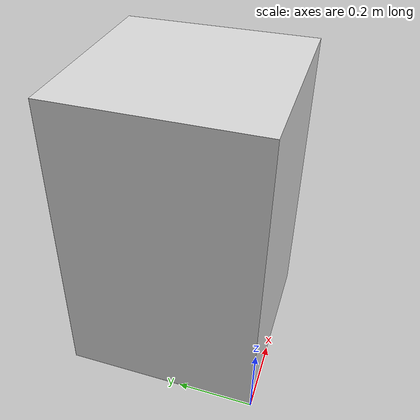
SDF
<?xml version="1.0" encoding="utf-8"?>
<sdf version='1.7'>
  <model name='Obstacal'>
    <link name='base_link'>
      <inertial>
        <pose>0.26 0.26 0.41 0 -0 0</pose>
        <mass>3.3896</mass>
        <inertia>
          <ixx>0.40359</ixx>
          <ixy>4.3299e-17</ixy>
          <ixz>8.3711e-17</ixz>
          <iyy>0.40359</iyy>
          <iyz>-4.3502e-17</iyz>
          <izz>0.25884</izz>
        </inertia>
      </inertial>
      <collision name='base_link_collision'>
        <pose>0 0 0 0 -0 0</pose>
        <geometry>
          <mesh>
            <scale>1 1 1</scale>
            <uri>model://Obstacal/meshes/base_link.STL</uri>
          </mesh>
        </geometry>
      </collision>
      <visual name='base_link_visual'>
        <pose>0 0 0 0 -0 0</pose>
        <geometry>
          <mesh>
            <scale>1 1 1</scale>
            <uri>model://Obstacal/meshes/base_link.dae</uri>
          </mesh>
        </geometry>
      </visual>
    </link>
  </model>
</sdf>
